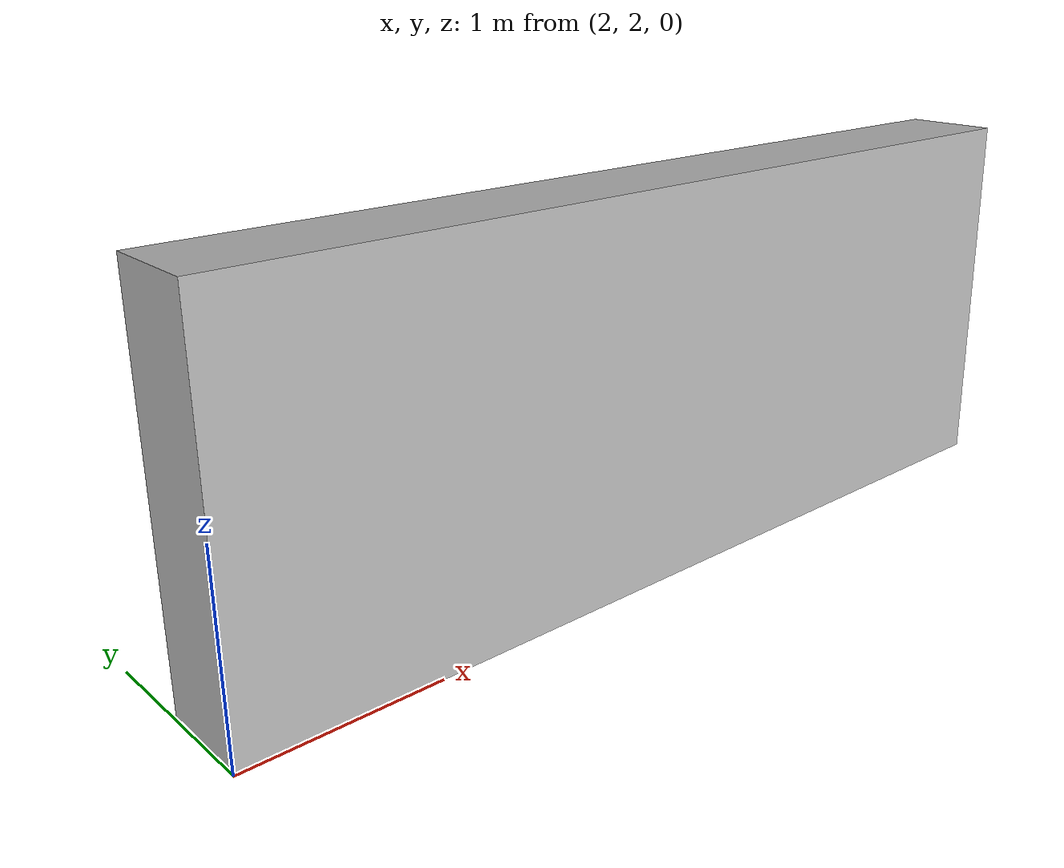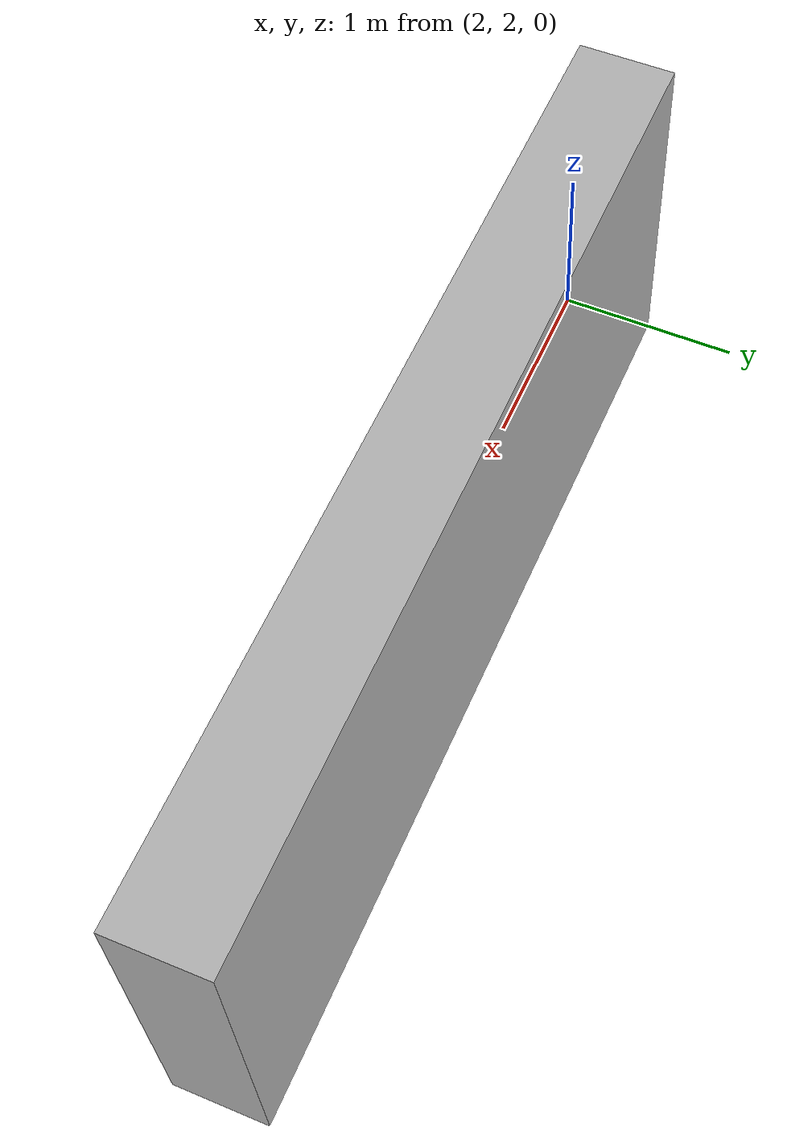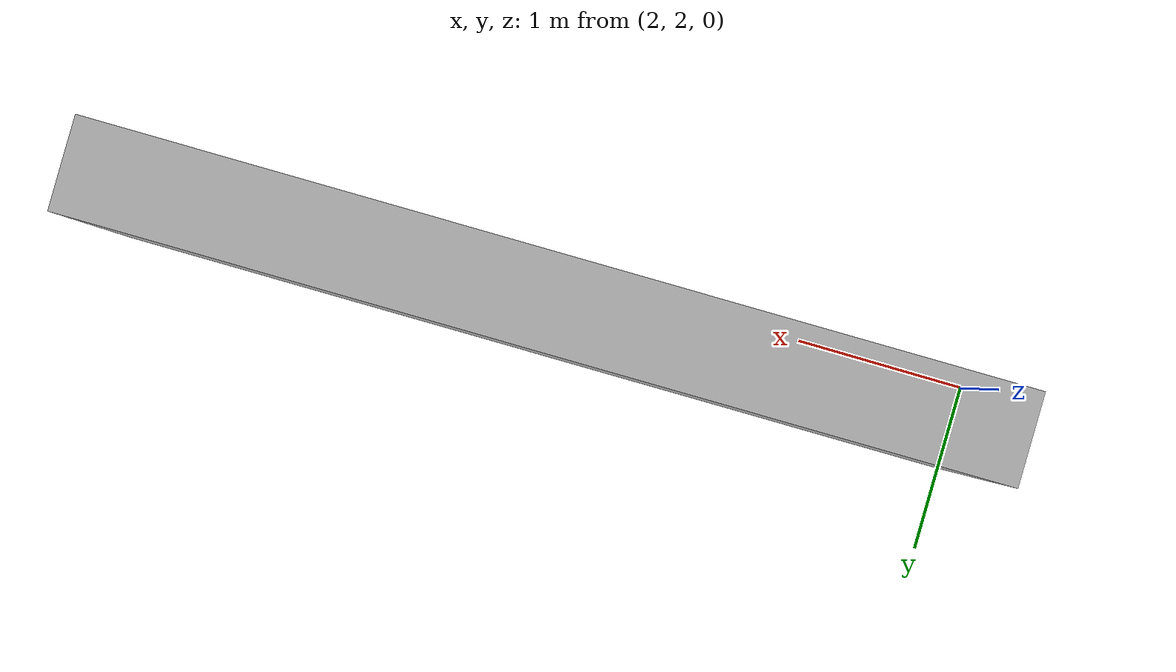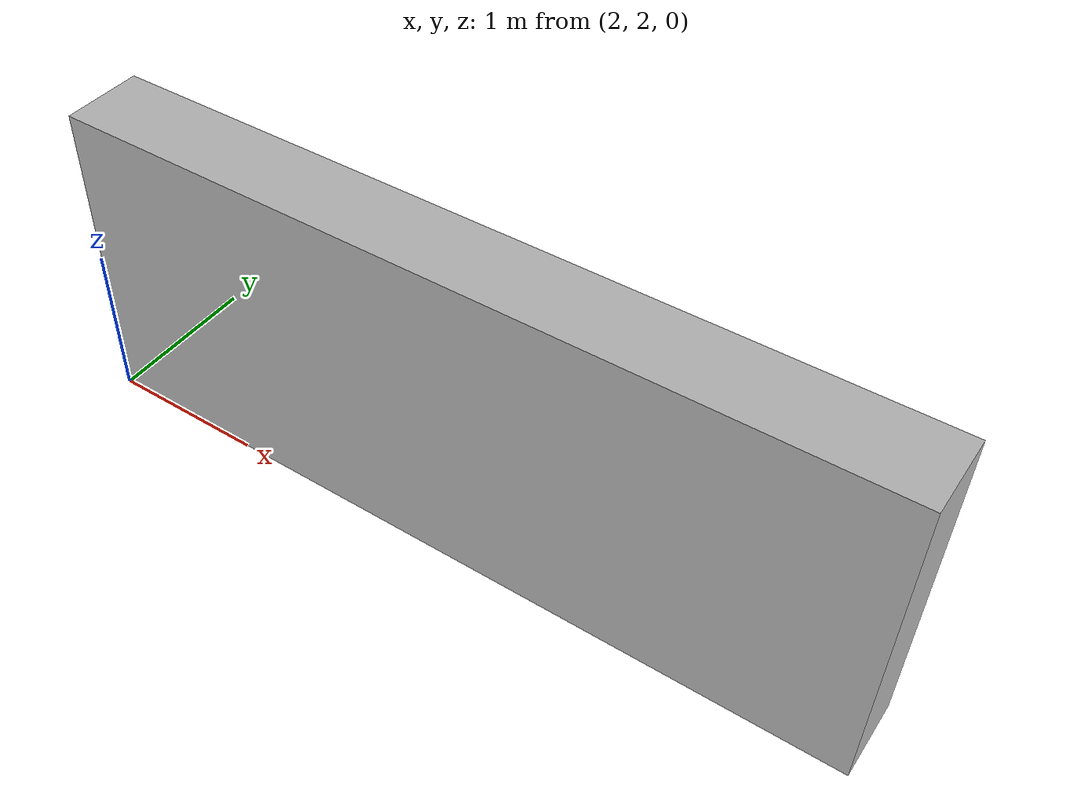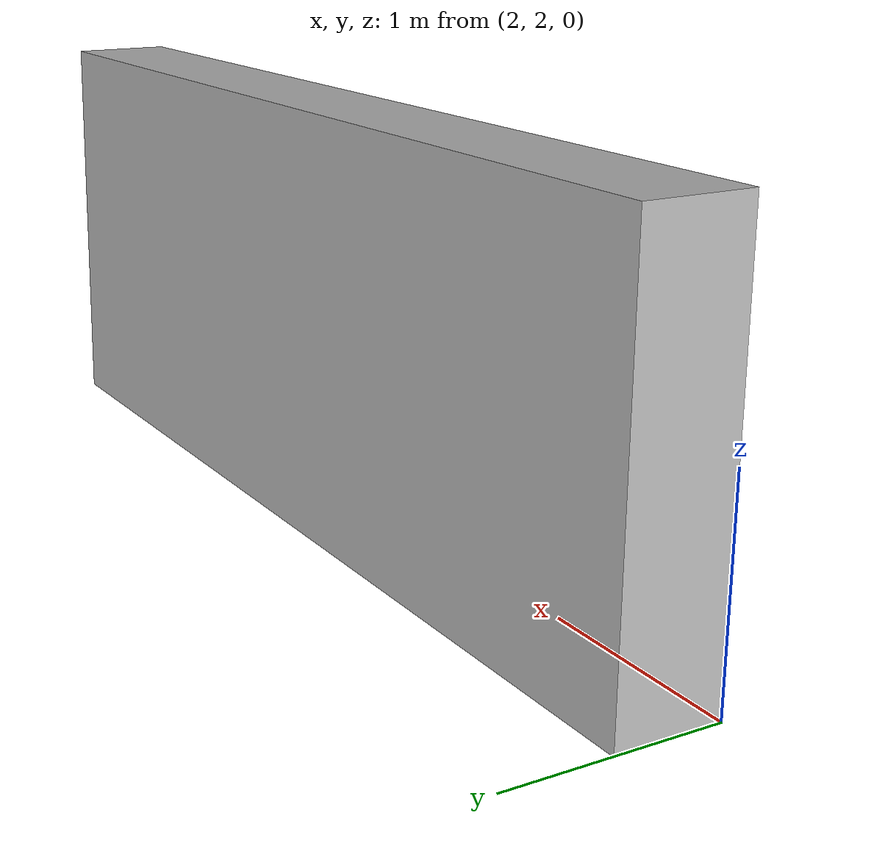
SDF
<?xml version='1.0'?>
<sdf version="1.4">
  <model name="wall">
    <pose>0 0 0 0 0 0</pose>
    <static>true</static>
    <link name="link_plant">
      <visual name="visual">
        <geometry>
          <mesh>
            <uri>model://wall/meshes/wall.dae</uri>
            <scale>1 1 1</scale>
          </mesh>
        </geometry>
      </visual>
    </link>

  </model>
</sdf>
